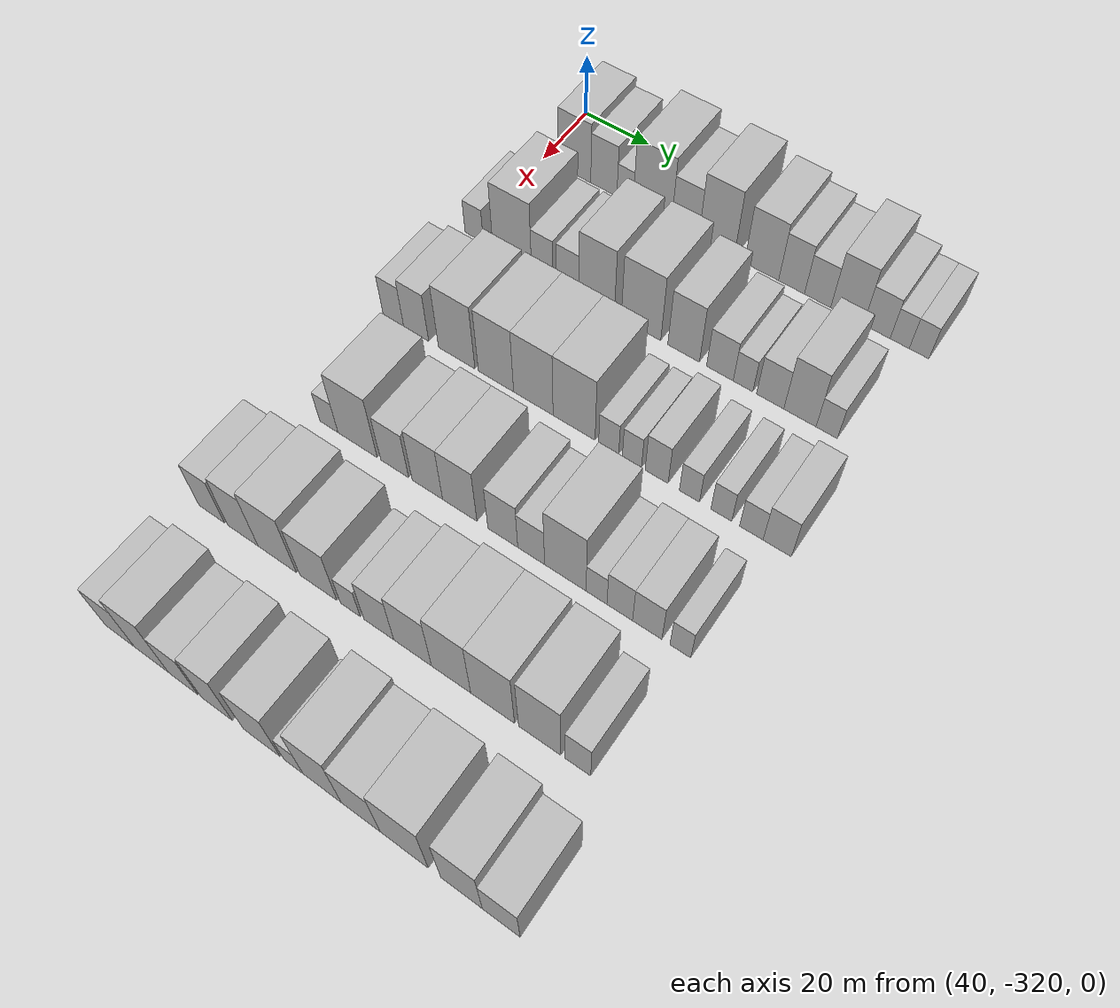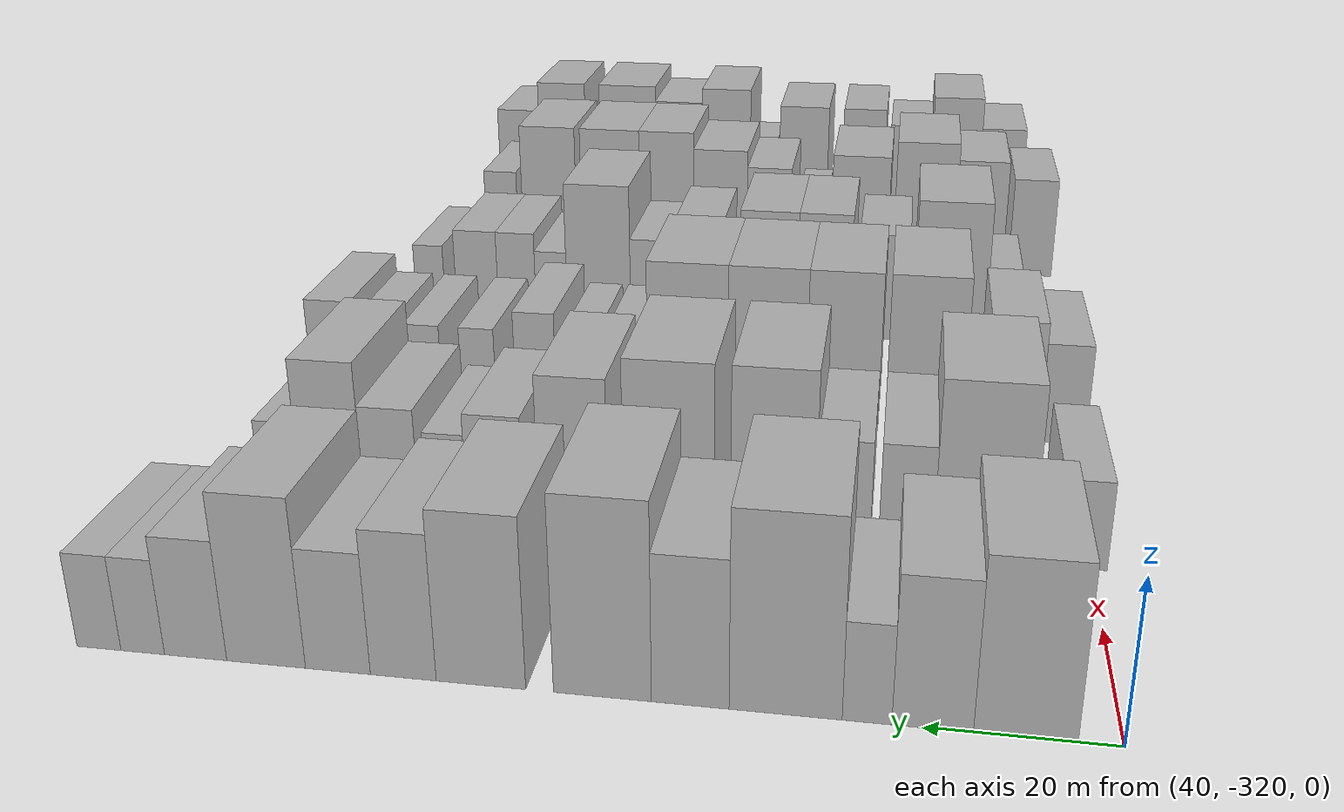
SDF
<sdf version="1.6">
 <world name="default">
  <model name="building_26">
   <static>1</static>
   <pose>50.0000 -310.2502 0 0.000000 0.000000 0.000000</pose>
   <link name="link">
    <pose>0 0 10.50 0 0 0</pose>
    <collision name="collision"><geometry><box><size>20.0000 10.3448 21.0000</size></box></geometry></collision>
    <visual name="visual">
     <cast_shadows>0</cast_shadows>
     <geometry><box><size>20.0000 10.3448 21.0000</size></box></geometry>
     <material>
      <script>
       <uri>model://HANNAS_wall/materials/scripts</uri>
       <uri>model://HANNAS_wall/materials/textures</uri>
       <name>vrc/HANNAS_wall</name>
      </script>
     </material>
    </visual>
   </link>
  </model>
  <model name="building_27">
   <static>1</static>
   <pose>50.0000 -300.9829 0 0.000000 0.000000 0.000000</pose>
   <link name="link">
    <pose>0 0 9.00 0 0 0</pose>
    <collision name="collision"><geometry><box><size>20.0000 8.1897 18.0000</size></box></geometry></collision>
    <visual name="visual">
     <cast_shadows>0</cast_shadows>
     <geometry><box><size>20.0000 8.1897 18.0000</size></box></geometry>
     <material>
      <script>
       <uri>model://HANNAS_wall/materials/scripts</uri>
       <uri>model://HANNAS_wall/materials/textures</uri>
       <name>vrc/HANNAS_wall</name>
      </script>
     </material>
    </visual>
   </link>
  </model>
  <model name="building_28">
   <static>1</static>
   <pose>50.0000 -294.3668 0 0.000000 0.000000 0.000000</pose>
   <link name="link">
    <pose>0 0 6.00 0 0 0</pose>
    <collision name="collision"><geometry><box><size>20.0000 5.0425 12.0000</size></box></geometry></collision>
    <visual name="visual">
     <cast_shadows>0</cast_shadows>
     <geometry><box><size>20.0000 5.0425 12.0000</size></box></geometry>
     <material>
      <script>
       <uri>model://HANNAS_wall/materials/scripts</uri>
       <uri>model://HANNAS_wall/materials/textures</uri>
       <name>vrc/HANNAS_wall</name>
      </script>
     </material>
    </visual>
   </link>
  </model>
  <model name="building_29">
   <static>1</static>
   <pose>50.0000 -286.0138 0 0.000000 0.000000 0.000000</pose>
   <link name="link">
    <pose>0 0 12.00 0 0 0</pose>
    <collision name="collision"><geometry><box><size>20.0000 11.6634 24.0000</size></box></geometry></collision>
    <visual name="visual">
     <cast_shadows>0</cast_shadows>
     <geometry><box><size>20.0000 11.6634 24.0000</size></box></geometry>
     <material>
      <script>
       <uri>model://HANNAS_wall/materials/scripts</uri>
       <uri>model://HANNAS_wall/materials/textures</uri>
       <name>vrc/HANNAS_wall</name>
      </script>
     </material>
    </visual>
   </link>
  </model>
  <model name="building_30">
   <static>1</static>
   <pose>50.0000 -276.1101 0 0.000000 0.000000 0.000000</pose>
   <link name="link">
    <pose>0 0 9.00 0 0 0</pose>
    <collision name="collision"><geometry><box><size>20.0000 8.1439 18.0000</size></box></geometry></collision>
    <visual name="visual">
     <cast_shadows>0</cast_shadows>
     <geometry><box><size>20.0000 8.1439 18.0000</size></box></geometry>
     <material>
      <script>
       <uri>model://HANNAS_wall/materials/scripts</uri>
       <uri>model://HANNAS_wall/materials/textures</uri>
       <name>vrc/HANNAS_wall</name>
      </script>
     </material>
    </visual>
   </link>
  </model>
  <model name="building_31">
   <static>1</static>
   <pose>50.0000 -266.8051 0 0.000000 0.000000 0.000000</pose>
   <link name="link">
    <pose>0 0 12.00 0 0 0</pose>
    <collision name="collision"><geometry><box><size>20.0000 10.4660 24.0000</size></box></geometry></collision>
    <visual name="visual">
     <cast_shadows>0</cast_shadows>
     <geometry><box><size>20.0000 10.4660 24.0000</size></box></geometry>
     <material>
      <script>
       <uri>model://HANNAS_wall/materials/scripts</uri>
       <uri>model://HANNAS_wall/materials/textures</uri>
       <name>vrc/HANNAS_wall</name>
      </script>
     </material>
    </visual>
   </link>
  </model>
  <model name="building_32">
   <static>1</static>
   <pose>50.0000 -253.6817 0 0.000000 0.000000 0.000000</pose>
   <link name="link">
    <pose>0 0 10.50 0 0 0</pose>
    <collision name="collision"><geometry><box><size>20.0000 9.7808 21.0000</size></box></geometry></collision>
    <visual name="visual">
     <cast_shadows>0</cast_shadows>
     <geometry><box><size>20.0000 9.7808 21.0000</size></box></geometry>
     <material>
      <script>
       <uri>model://HANNAS_wall/materials/scripts</uri>
       <uri>model://HANNAS_wall/materials/textures</uri>
       <name>vrc/HANNAS_wall</name>
      </script>
     </material>
    </visual>
   </link>
  </model>
  <model name="building_33">
   <static>1</static>
   <pose>50.0000 -245.1369 0 0.000000 0.000000 0.000000</pose>
   <link name="link">
    <pose>0 0 9.00 0 0 0</pose>
    <collision name="collision"><geometry><box><size>20.0000 7.3089 18.0000</size></box></geometry></collision>
    <visual name="visual">
     <cast_shadows>0</cast_shadows>
     <geometry><box><size>20.0000 7.3089 18.0000</size></box></geometry>
     <material>
      <script>
       <uri>model://HANNAS_wall/materials/scripts</uri>
       <uri>model://HANNAS_wall/materials/textures</uri>
       <name>vrc/HANNAS_wall</name>
      </script>
     </material>
    </visual>
   </link>
  </model>
  <model name="building_34">
   <static>1</static>
   <pose>50.0000 -237.8339 0 0.000000 0.000000 0.000000</pose>
   <link name="link">
    <pose>0 0 7.50 0 0 0</pose>
    <collision name="collision"><geometry><box><size>20.0000 7.2971 15.0000</size></box></geometry></collision>
    <visual name="visual">
     <cast_shadows>0</cast_shadows>
     <geometry><box><size>20.0000 7.2971 15.0000</size></box></geometry>
     <material>
      <script>
       <uri>model://HANNAS_wall/materials/scripts</uri>
       <uri>model://HANNAS_wall/materials/textures</uri>
       <name>vrc/HANNAS_wall</name>
      </script>
     </material>
    </visual>
   </link>
  </model>
  <model name="building_35">
   <static>1</static>
   <pose>50.0000 -229.6963 0 0.000000 0.000000 0.000000</pose>
   <link name="link">
    <pose>0 0 10.50 0 0 0</pose>
    <collision name="collision"><geometry><box><size>20.0000 8.9779 21.0000</size></box></geometry></collision>
    <visual name="visual">
     <cast_shadows>0</cast_shadows>
     <geometry><box><size>20.0000 8.9779 21.0000</size></box></geometry>
     <material>
      <script>
       <uri>model://HANNAS_wall/materials/scripts</uri>
       <uri>model://HANNAS_wall/materials/textures</uri>
       <name>vrc/HANNAS_wall</name>
      </script>
     </material>
    </visual>
   </link>
  </model>
  <model name="building_36">
   <static>1</static>
   <pose>50.0000 -221.6062 0 0.000000 0.000000 0.000000</pose>
   <link name="link">
    <pose>0 0 7.50 0 0 0</pose>
    <collision name="collision"><geometry><box><size>20.0000 7.2023 15.0000</size></box></geometry></collision>
    <visual name="visual">
     <cast_shadows>0</cast_shadows>
     <geometry><box><size>20.0000 7.2023 15.0000</size></box></geometry>
     <material>
      <script>
       <uri>model://HANNAS_wall/materials/scripts</uri>
       <uri>model://HANNAS_wall/materials/textures</uri>
       <name>vrc/HANNAS_wall</name>
      </script>
     </material>
    </visual>
   </link>
  </model>
  <model name="building_37">
   <static>1</static>
   <pose>50.0000 -215.4542 0 0.000000 0.000000 0.000000</pose>
   <link name="link">
    <pose>0 0 6.00 0 0 0</pose>
    <collision name="collision"><geometry><box><size>20.0000 5.1017 12.0000</size></box></geometry></collision>
    <visual name="visual">
     <cast_shadows>0</cast_shadows>
     <geometry><box><size>20.0000 5.1017 12.0000</size></box></geometry>
     <material>
      <script>
       <uri>model://HANNAS_wall/materials/scripts</uri>
       <uri>model://HANNAS_wall/materials/textures</uri>
       <name>vrc/HANNAS_wall</name>
      </script>
     </material>
    </visual>
   </link>
  </model>
  <model name="building_38">
   <static>1</static>
   <pose>50.0000 -210.3099 0 0.000000 0.000000 0.000000</pose>
   <link name="link">
    <pose>0 0 6.00 0 0 0</pose>
    <collision name="collision"><geometry><box><size>20.0000 5.1870 12.0000</size></box></geometry></collision>
    <visual name="visual">
     <cast_shadows>0</cast_shadows>
     <geometry><box><size>20.0000 5.1870 12.0000</size></box></geometry>
     <material>
      <script>
       <uri>model://HANNAS_wall/materials/scripts</uri>
       <uri>model://HANNAS_wall/materials/textures</uri>
       <name>vrc/HANNAS_wall</name>
      </script>
     </material>
    </visual>
   </link>
  </model>
  <model name="building_149">
   <static>1</static>
   <pose>82.0000 -318.8786 0 0.000000 0.000000 0.000000</pose>
   <link name="link">
    <pose>0 0 6.00 0 0 0</pose>
    <collision name="collision"><geometry><box><size>20.0000 5.7820 12.0000</size></box></geometry></collision>
    <visual name="visual">
     <cast_shadows>0</cast_shadows>
     <geometry><box><size>20.0000 5.7820 12.0000</size></box></geometry>
     <material>
      <script>
       <uri>model://HANNAS_wall/materials/scripts</uri>
       <uri>model://HANNAS_wall/materials/textures</uri>
       <name>vrc/HANNAS_wall</name>
      </script>
     </material>
    </visual>
   </link>
  </model>
  <model name="building_150">
   <static>1</static>
   <pose>82.0000 -307.0043 0 0.000000 0.000000 0.000000</pose>
   <link name="link">
    <pose>0 0 12.00 0 0 0</pose>
    <collision name="collision"><geometry><box><size>20.0000 11.9664 24.0000</size></box></geometry></collision>
    <visual name="visual">
     <cast_shadows>0</cast_shadows>
     <geometry><box><size>20.0000 11.9664 24.0000</size></box></geometry>
     <material>
      <script>
       <uri>model://HANNAS_wall/materials/scripts</uri>
       <uri>model://HANNAS_wall/materials/textures</uri>
       <name>vrc/HANNAS_wall</name>
      </script>
     </material>
    </visual>
   </link>
  </model>
  <model name="building_151">
   <static>1</static>
   <pose>82.0000 -297.7386 0 0.000000 0.000000 0.000000</pose>
   <link name="link">
    <pose>0 0 7.50 0 0 0</pose>
    <collision name="collision"><geometry><box><size>20.0000 6.5650 15.0000</size></box></geometry></collision>
    <visual name="visual">
     <cast_shadows>0</cast_shadows>
     <geometry><box><size>20.0000 6.5650 15.0000</size></box></geometry>
     <material>
      <script>
       <uri>model://HANNAS_wall/materials/scripts</uri>
       <uri>model://HANNAS_wall/materials/textures</uri>
       <name>vrc/HANNAS_wall</name>
      </script>
     </material>
    </visual>
   </link>
  </model>
  <model name="building_152">
   <static>1</static>
   <pose>82.0000 -290.1048 0 0.000000 0.000000 0.000000</pose>
   <link name="link">
    <pose>0 0 7.50 0 0 0</pose>
    <collision name="collision"><geometry><box><size>20.0000 6.7027 15.0000</size></box></geometry></collision>
    <visual name="visual">
     <cast_shadows>0</cast_shadows>
     <geometry><box><size>20.0000 6.7027 15.0000</size></box></geometry>
     <material>
      <script>
       <uri>model://HANNAS_wall/materials/scripts</uri>
       <uri>model://HANNAS_wall/materials/textures</uri>
       <name>vrc/HANNAS_wall</name>
      </script>
     </material>
    </visual>
   </link>
  </model>
  <model name="building_153">
   <static>1</static>
   <pose>82.0000 -281.4991 0 0.000000 0.000000 0.000000</pose>
   <link name="link">
    <pose>0 0 12.00 0 0 0</pose>
    <collision name="collision"><geometry><box><size>20.0000 10.5086 24.0000</size></box></geometry></collision>
    <visual name="visual">
     <cast_shadows>0</cast_shadows>
     <geometry><box><size>20.0000 10.5086 24.0000</size></box></geometry>
     <material>
      <script>
       <uri>model://HANNAS_wall/materials/scripts</uri>
       <uri>model://HANNAS_wall/materials/textures</uri>
       <name>vrc/HANNAS_wall</name>
      </script>
     </material>
    </visual>
   </link>
  </model>
  <model name="building_154">
   <static>1</static>
   <pose>82.0000 -268.5455 0 0.000000 0.000000 0.000000</pose>
   <link name="link">
    <pose>0 0 12.00 0 0 0</pose>
    <collision name="collision"><geometry><box><size>20.0000 11.3986 24.0000</size></box></geometry></collision>
    <visual name="visual">
     <cast_shadows>0</cast_shadows>
     <geometry><box><size>20.0000 11.3986 24.0000</size></box></geometry>
     <material>
      <script>
       <uri>model://HANNAS_wall/materials/scripts</uri>
       <uri>model://HANNAS_wall/materials/textures</uri>
       <name>vrc/HANNAS_wall</name>
      </script>
     </material>
    </visual>
   </link>
  </model>
  <model name="building_155">
   <static>1</static>
   <pose>82.0000 -256.4005 0 0.000000 0.000000 0.000000</pose>
   <link name="link">
    <pose>0 0 10.50 0 0 0</pose>
    <collision name="collision"><geometry><box><size>20.0000 8.8914 21.0000</size></box></geometry></collision>
    <visual name="visual">
     <cast_shadows>0</cast_shadows>
     <geometry><box><size>20.0000 8.8914 21.0000</size></box></geometry>
     <material>
      <script>
       <uri>model://HANNAS_wall/materials/scripts</uri>
       <uri>model://HANNAS_wall/materials/textures</uri>
       <name>vrc/HANNAS_wall</name>
      </script>
     </material>
    </visual>
   </link>
  </model>
  <model name="building_156">
   <static>1</static>
   <pose>82.0000 -246.2782 0 0.000000 0.000000 0.000000</pose>
   <link name="link">
    <pose>0 0 7.50 0 0 0</pose>
    <collision name="collision"><geometry><box><size>20.0000 7.3533 15.0000</size></box></geometry></collision>
    <visual name="visual">
     <cast_shadows>0</cast_shadows>
     <geometry><box><size>20.0000 7.3533 15.0000</size></box></geometry>
     <material>
      <script>
       <uri>model://HANNAS_wall/materials/scripts</uri>
       <uri>model://HANNAS_wall/materials/textures</uri>
       <name>vrc/HANNAS_wall</name>
      </script>
     </material>
    </visual>
   </link>
  </model>
  <model name="building_157">
   <static>1</static>
   <pose>82.0000 -239.9407 0 0.000000 0.000000 0.000000</pose>
   <link name="link">
    <pose>0 0 6.00 0 0 0</pose>
    <collision name="collision"><geometry><box><size>20.0000 5.3215 12.0000</size></box></geometry></collision>
    <visual name="visual">
     <cast_shadows>0</cast_shadows>
     <geometry><box><size>20.0000 5.3215 12.0000</size></box></geometry>
     <material>
      <script>
       <uri>model://HANNAS_wall/materials/scripts</uri>
       <uri>model://HANNAS_wall/materials/textures</uri>
       <name>vrc/HANNAS_wall</name>
      </script>
     </material>
    </visual>
   </link>
  </model>
  <model name="building_158">
   <static>1</static>
   <pose>82.0000 -232.6326 0 0.000000 0.000000 0.000000</pose>
   <link name="link">
    <pose>0 0 7.50 0 0 0</pose>
    <collision name="collision"><geometry><box><size>20.0000 7.2948 15.0000</size></box></geometry></collision>
    <visual name="visual">
     <cast_shadows>0</cast_shadows>
     <geometry><box><size>20.0000 7.2948 15.0000</size></box></geometry>
     <material>
      <script>
       <uri>model://HANNAS_wall/materials/scripts</uri>
       <uri>model://HANNAS_wall/materials/textures</uri>
       <name>vrc/HANNAS_wall</name>
      </script>
     </material>
    </visual>
   </link>
  </model>
  <model name="building_159">
   <static>1</static>
   <pose>82.0000 -224.7277 0 0.000000 0.000000 0.000000</pose>
   <link name="link">
    <pose>0 0 10.50 0 0 0</pose>
    <collision name="collision"><geometry><box><size>20.0000 8.5152 21.0000</size></box></geometry></collision>
    <visual name="visual">
     <cast_shadows>0</cast_shadows>
     <geometry><box><size>20.0000 8.5152 21.0000</size></box></geometry>
     <material>
      <script>
       <uri>model://HANNAS_wall/materials/scripts</uri>
       <uri>model://HANNAS_wall/materials/textures</uri>
       <name>vrc/HANNAS_wall</name>
      </script>
     </material>
    </visual>
   </link>
  </model>
  <model name="building_160">
   <static>1</static>
   <pose>82.0000 -217.7069 0 0.000000 0.000000 0.000000</pose>
   <link name="link">
    <pose>0 0 6.00 0 0 0</pose>
    <collision name="collision"><geometry><box><size>20.0000 5.5263 12.0000</size></box></geometry></collision>
    <visual name="visual">
     <cast_shadows>0</cast_shadows>
     <geometry><box><size>20.0000 5.5263 12.0000</size></box></geometry>
     <material>
      <script>
       <uri>model://HANNAS_wall/materials/scripts</uri>
       <uri>model://HANNAS_wall/materials/textures</uri>
       <name>vrc/HANNAS_wall</name>
      </script>
     </material>
    </visual>
   </link>
  </model>
  <model name="building_272">
   <static>1</static>
   <pose>114.0000 -319.1784 0 0.000000 0.000000 0.000000</pose>
   <link name="link">
    <pose>0 0 7.50 0 0 0</pose>
    <collision name="collision"><geometry><box><size>20.0000 6.3528 15.0000</size></box></geometry></collision>
    <visual name="visual">
     <cast_shadows>0</cast_shadows>
     <geometry><box><size>20.0000 6.3528 15.0000</size></box></geometry>
     <material>
      <script>
       <uri>model://HANNAS_wall/materials/scripts</uri>
       <uri>model://HANNAS_wall/materials/textures</uri>
       <name>vrc/HANNAS_wall</name>
      </script>
     </material>
    </visual>
   </link>
  </model>
  <model name="building_273">
   <static>1</static>
   <pose>114.0000 -312.1640 0 0.000000 0.000000 0.000000</pose>
   <link name="link">
    <pose>0 0 9.00 0 0 0</pose>
    <collision name="collision"><geometry><box><size>20.0000 7.6761 18.0000</size></box></geometry></collision>
    <visual name="visual">
     <cast_shadows>0</cast_shadows>
     <geometry><box><size>20.0000 7.6761 18.0000</size></box></geometry>
     <material>
      <script>
       <uri>model://HANNAS_wall/materials/scripts</uri>
       <uri>model://HANNAS_wall/materials/textures</uri>
       <name>vrc/HANNAS_wall</name>
      </script>
     </material>
    </visual>
   </link>
  </model>
  <model name="building_274">
   <static>1</static>
   <pose>114.0000 -299.8731 0 0.000000 0.000000 0.000000</pose>
   <link name="link">
    <pose>0 0 12.00 0 0 0</pose>
    <collision name="collision"><geometry><box><size>20.0000 10.9057 24.0000</size></box></geometry></collision>
    <visual name="visual">
     <cast_shadows>0</cast_shadows>
     <geometry><box><size>20.0000 10.9057 24.0000</size></box></geometry>
     <material>
      <script>
       <uri>model://HANNAS_wall/materials/scripts</uri>
       <uri>model://HANNAS_wall/materials/textures</uri>
       <name>vrc/HANNAS_wall</name>
      </script>
     </material>
    </visual>
   </link>
  </model>
  <model name="building_275">
   <static>1</static>
   <pose>114.0000 -288.2675 0 0.000000 0.000000 0.000000</pose>
   <link name="link">
    <pose>0 0 12.00 0 0 0</pose>
    <collision name="collision"><geometry><box><size>20.0000 10.3055 24.0000</size></box></geometry></collision>
    <visual name="visual">
     <cast_shadows>0</cast_shadows>
     <geometry><box><size>20.0000 10.3055 24.0000</size></box></geometry>
     <material>
      <script>
       <uri>model://HANNAS_wall/materials/scripts</uri>
       <uri>model://HANNAS_wall/materials/textures</uri>
       <name>vrc/HANNAS_wall</name>
      </script>
     </material>
    </visual>
   </link>
  </model>
  <model name="building_276">
   <static>1</static>
   <pose>114.0000 -277.4690 0 0.000000 0.000000 0.000000</pose>
   <link name="link">
    <pose>0 0 12.00 0 0 0</pose>
    <collision name="collision"><geometry><box><size>20.0000 11.2916 24.0000</size></box></geometry></collision>
    <visual name="visual">
     <cast_shadows>0</cast_shadows>
     <geometry><box><size>20.0000 11.2916 24.0000</size></box></geometry>
     <material>
      <script>
       <uri>model://HANNAS_wall/materials/scripts</uri>
       <uri>model://HANNAS_wall/materials/textures</uri>
       <name>vrc/HANNAS_wall</name>
      </script>
     </material>
    </visual>
   </link>
  </model>
  <model name="building_277">
   <static>1</static>
   <pose>114.0000 -265.9635 0 0.000000 0.000000 0.000000</pose>
   <link name="link">
    <pose>0 0 12.00 0 0 0</pose>
    <collision name="collision"><geometry><box><size>20.0000 11.7194 24.0000</size></box></geometry></collision>
    <visual name="visual">
     <cast_shadows>0</cast_shadows>
     <geometry><box><size>20.0000 11.7194 24.0000</size></box></geometry>
     <material>
      <script>
       <uri>model://HANNAS_wall/materials/scripts</uri>
       <uri>model://HANNAS_wall/materials/textures</uri>
       <name>vrc/HANNAS_wall</name>
      </script>
     </material>
    </visual>
   </link>
  </model>
  <model name="building_278">
   <static>1</static>
   <pose>114.0000 -256.3662 0 0.000000 0.000000 0.000000</pose>
   <link name="link">
    <pose>0 0 6.00 0 0 0</pose>
    <collision name="collision"><geometry><box><size>20.0000 5.4751 12.0000</size></box></geometry></collision>
    <visual name="visual">
     <cast_shadows>0</cast_shadows>
     <geometry><box><size>20.0000 5.4751 12.0000</size></box></geometry>
     <material>
      <script>
       <uri>model://HANNAS_wall/materials/scripts</uri>
       <uri>model://HANNAS_wall/materials/textures</uri>
       <name>vrc/HANNAS_wall</name>
      </script>
     </material>
    </visual>
   </link>
  </model>
  <model name="building_279">
   <static>1</static>
   <pose>114.0000 -250.0505 0 0.000000 0.000000 0.000000</pose>
   <link name="link">
    <pose>0 0 6.00 0 0 0</pose>
    <collision name="collision"><geometry><box><size>20.0000 5.1563 12.0000</size></box></geometry></collision>
    <visual name="visual">
     <cast_shadows>0</cast_shadows>
     <geometry><box><size>20.0000 5.1563 12.0000</size></box></geometry>
     <material>
      <script>
       <uri>model://HANNAS_wall/materials/scripts</uri>
       <uri>model://HANNAS_wall/materials/textures</uri>
       <name>vrc/HANNAS_wall</name>
      </script>
     </material>
    </visual>
   </link>
  </model>
  <model name="building_280">
   <static>1</static>
   <pose>114.0000 -243.4200 0 0.000000 0.000000 0.000000</pose>
   <link name="link">
    <pose>0 0 7.50 0 0 0</pose>
    <collision name="collision"><geometry><box><size>20.0000 6.1046 15.0000</size></box></geometry></collision>
    <visual name="visual">
     <cast_shadows>0</cast_shadows>
     <geometry><box><size>20.0000 6.1046 15.0000</size></box></geometry>
     <material>
      <script>
       <uri>model://HANNAS_wall/materials/scripts</uri>
       <uri>model://HANNAS_wall/materials/textures</uri>
       <name>vrc/HANNAS_wall</name>
      </script>
     </material>
    </visual>
   </link>
  </model>
  <model name="building_281">
   <static>1</static>
   <pose>114.0000 -234.7457 0 0.000000 0.000000 0.000000</pose>
   <link name="link">
    <pose>0 0 6.00 0 0 0</pose>
    <collision name="collision"><geometry><box><size>20.0000 5.2440 12.0000</size></box></geometry></collision>
    <visual name="visual">
     <cast_shadows>0</cast_shadows>
     <geometry><box><size>20.0000 5.2440 12.0000</size></box></geometry>
     <material>
      <script>
       <uri>model://HANNAS_wall/materials/scripts</uri>
       <uri>model://HANNAS_wall/materials/textures</uri>
       <name>vrc/HANNAS_wall</name>
      </script>
     </material>
    </visual>
   </link>
  </model>
  <model name="building_282">
   <static>1</static>
   <pose>114.0000 -226.4640 0 0.000000 0.000000 0.000000</pose>
   <link name="link">
    <pose>0 0 6.00 0 0 0</pose>
    <collision name="collision"><geometry><box><size>20.0000 5.3193 12.0000</size></box></geometry></collision>
    <visual name="visual">
     <cast_shadows>0</cast_shadows>
     <geometry><box><size>20.0000 5.3193 12.0000</size></box></geometry>
     <material>
      <script>
       <uri>model://HANNAS_wall/materials/scripts</uri>
       <uri>model://HANNAS_wall/materials/textures</uri>
       <name>vrc/HANNAS_wall</name>
      </script>
     </material>
    </visual>
   </link>
  </model>
  <model name="building_283">
   <static>1</static>
   <pose>114.0000 -218.8257 0 0.000000 0.000000 0.000000</pose>
   <link name="link">
    <pose>0 0 6.00 0 0 0</pose>
    <collision name="collision"><geometry><box><size>20.0000 5.9572 12.0000</size></box></geometry></collision>
    <visual name="visual">
     <cast_shadows>0</cast_shadows>
     <geometry><box><size>20.0000 5.9572 12.0000</size></box></geometry>
     <material>
      <script>
       <uri>model://HANNAS_wall/materials/scripts</uri>
       <uri>model://HANNAS_wall/materials/textures</uri>
       <name>vrc/HANNAS_wall</name>
      </script>
     </material>
    </visual>
   </link>
  </model>
  <model name="building_284">
   <static>1</static>
   <pose>114.0000 -212.3174 0 0.000000 0.000000 0.000000</pose>
   <link name="link">
    <pose>0 0 7.50 0 0 0</pose>
    <collision name="collision"><geometry><box><size>20.0000 7.0594 15.0000</size></box></geometry></collision>
    <visual name="visual">
     <cast_shadows>0</cast_shadows>
     <geometry><box><size>20.0000 7.0594 15.0000</size></box></geometry>
     <material>
      <script>
       <uri>model://HANNAS_wall/materials/scripts</uri>
       <uri>model://HANNAS_wall/materials/textures</uri>
       <name>vrc/HANNAS_wall</name>
      </script>
     </material>
    </visual>
   </link>
  </model>
  <model name="building_392">
   <static>1</static>
   <pose>146.0000 -312.2354 0 0.000000 0.000000 0.000000</pose>
   <link name="link">
    <pose>0 0 6.00 0 0 0</pose>
    <collision name="collision"><geometry><box><size>20.0000 5.4741 12.0000</size></box></geometry></collision>
    <visual name="visual">
     <cast_shadows>0</cast_shadows>
     <geometry><box><size>20.0000 5.4741 12.0000</size></box></geometry>
     <material>
      <script>
       <uri>model://HANNAS_wall/materials/scripts</uri>
       <uri>model://HANNAS_wall/materials/textures</uri>
       <name>vrc/HANNAS_wall</name>
      </script>
     </material>
    </visual>
   </link>
  </model>
  <model name="building_393">
   <static>1</static>
   <pose>146.0000 -303.7010 0 0.000000 0.000000 0.000000</pose>
   <link name="link">
    <pose>0 0 12.00 0 0 0</pose>
    <collision name="collision"><geometry><box><size>20.0000 11.5946 24.0000</size></box></geometry></collision>
    <visual name="visual">
     <cast_shadows>0</cast_shadows>
     <geometry><box><size>20.0000 11.5946 24.0000</size></box></geometry>
     <material>
      <script>
       <uri>model://HANNAS_wall/materials/scripts</uri>
       <uri>model://HANNAS_wall/materials/textures</uri>
       <name>vrc/HANNAS_wall</name>
      </script>
     </material>
    </visual>
   </link>
  </model>
  <model name="building_394">
   <static>1</static>
   <pose>146.0000 -292.8615 0 0.000000 0.000000 0.000000</pose>
   <link name="link">
    <pose>0 0 9.00 0 0 0</pose>
    <collision name="collision"><geometry><box><size>20.0000 8.0845 18.0000</size></box></geometry></collision>
    <visual name="visual">
     <cast_shadows>0</cast_shadows>
     <geometry><box><size>20.0000 8.0845 18.0000</size></box></geometry>
     <material>
      <script>
       <uri>model://HANNAS_wall/materials/scripts</uri>
       <uri>model://HANNAS_wall/materials/textures</uri>
       <name>vrc/HANNAS_wall</name>
      </script>
     </material>
    </visual>
   </link>
  </model>
  <model name="building_395">
   <static>1</static>
   <pose>146.0000 -283.5139 0 0.000000 0.000000 0.000000</pose>
   <link name="link">
    <pose>0 0 10.50 0 0 0</pose>
    <collision name="collision"><geometry><box><size>20.0000 8.6107 21.0000</size></box></geometry></collision>
    <visual name="visual">
     <cast_shadows>0</cast_shadows>
     <geometry><box><size>20.0000 8.6107 21.0000</size></box></geometry>
     <material>
      <script>
       <uri>model://HANNAS_wall/materials/scripts</uri>
       <uri>model://HANNAS_wall/materials/textures</uri>
       <name>vrc/HANNAS_wall</name>
      </script>
     </material>
    </visual>
   </link>
  </model>
  <model name="building_396">
   <static>1</static>
   <pose>146.0000 -274.4364 0 0.000000 0.000000 0.000000</pose>
   <link name="link">
    <pose>0 0 10.50 0 0 0</pose>
    <collision name="collision"><geometry><box><size>20.0000 9.5443 21.0000</size></box></geometry></collision>
    <visual name="visual">
     <cast_shadows>0</cast_shadows>
     <geometry><box><size>20.0000 9.5443 21.0000</size></box></geometry>
     <material>
      <script>
       <uri>model://HANNAS_wall/materials/scripts</uri>
       <uri>model://HANNAS_wall/materials/textures</uri>
       <name>vrc/HANNAS_wall</name>
      </script>
     </material>
    </visual>
   </link>
  </model>
  <model name="building_397">
   <static>1</static>
   <pose>146.0000 -262.6228 0 0.000000 0.000000 0.000000</pose>
   <link name="link">
    <pose>0 0 9.00 0 0 0</pose>
    <collision name="collision"><geometry><box><size>20.0000 8.0829 18.0000</size></box></geometry></collision>
    <visual name="visual">
     <cast_shadows>0</cast_shadows>
     <geometry><box><size>20.0000 8.0829 18.0000</size></box></geometry>
     <material>
      <script>
       <uri>model://HANNAS_wall/materials/scripts</uri>
       <uri>model://HANNAS_wall/materials/textures</uri>
       <name>vrc/HANNAS_wall</name>
      </script>
     </material>
    </visual>
   </link>
  </model>
  <model name="building_398">
   <static>1</static>
   <pose>146.0000 -255.0099 0 0.000000 0.000000 0.000000</pose>
   <link name="link">
    <pose>0 0 7.50 0 0 0</pose>
    <collision name="collision"><geometry><box><size>20.0000 7.1429 15.0000</size></box></geometry></collision>
    <visual name="visual">
     <cast_shadows>0</cast_shadows>
     <geometry><box><size>20.0000 7.1429 15.0000</size></box></geometry>
     <material>
      <script>
       <uri>model://HANNAS_wall/materials/scripts</uri>
       <uri>model://HANNAS_wall/materials/textures</uri>
       <name>vrc/HANNAS_wall</name>
      </script>
     </material>
    </visual>
   </link>
  </model>
  <model name="building_399">
   <static>1</static>
   <pose>146.0000 -246.0383 0 0.000000 0.000000 0.000000</pose>
   <link name="link">
    <pose>0 0 12.00 0 0 0</pose>
    <collision name="collision"><geometry><box><size>20.0000 10.8003 24.0000</size></box></geometry></collision>
    <visual name="visual">
     <cast_shadows>0</cast_shadows>
     <geometry><box><size>20.0000 10.8003 24.0000</size></box></geometry>
     <material>
      <script>
       <uri>model://HANNAS_wall/materials/scripts</uri>
       <uri>model://HANNAS_wall/materials/textures</uri>
       <name>vrc/HANNAS_wall</name>
      </script>
     </material>
    </visual>
   </link>
  </model>
  <model name="building_400">
   <static>1</static>
   <pose>146.0000 -237.9564 0 0.000000 0.000000 0.000000</pose>
   <link name="link">
    <pose>0 0 6.00 0 0 0</pose>
    <collision name="collision"><geometry><box><size>20.0000 5.3635 12.0000</size></box></geometry></collision>
    <visual name="visual">
     <cast_shadows>0</cast_shadows>
     <geometry><box><size>20.0000 5.3635 12.0000</size></box></geometry>
     <material>
      <script>
       <uri>model://HANNAS_wall/materials/scripts</uri>
       <uri>model://HANNAS_wall/materials/textures</uri>
       <name>vrc/HANNAS_wall</name>
      </script>
     </material>
    </visual>
   </link>
  </model>
  <model name="building_401">
   <static>1</static>
   <pose>146.0000 -232.0297 0 0.000000 0.000000 0.000000</pose>
   <link name="link">
    <pose>0 0 7.50 0 0 0</pose>
    <collision name="collision"><geometry><box><size>20.0000 6.4900 15.0000</size></box></geometry></collision>
    <visual name="visual">
     <cast_shadows>0</cast_shadows>
     <geometry><box><size>20.0000 6.4900 15.0000</size></box></geometry>
     <material>
      <script>
       <uri>model://HANNAS_wall/materials/scripts</uri>
       <uri>model://HANNAS_wall/materials/textures</uri>
       <name>vrc/HANNAS_wall</name>
      </script>
     </material>
    </visual>
   </link>
  </model>
  <model name="building_402">
   <static>1</static>
   <pose>146.0000 -225.1302 0 0.000000 0.000000 0.000000</pose>
   <link name="link">
    <pose>0 0 7.50 0 0 0</pose>
    <collision name="collision"><geometry><box><size>20.0000 7.3090 15.0000</size></box></geometry></collision>
    <visual name="visual">
     <cast_shadows>0</cast_shadows>
     <geometry><box><size>20.0000 7.3090 15.0000</size></box></geometry>
     <material>
      <script>
       <uri>model://HANNAS_wall/materials/scripts</uri>
       <uri>model://HANNAS_wall/materials/textures</uri>
       <name>vrc/HANNAS_wall</name>
      </script>
     </material>
    </visual>
   </link>
  </model>
  <model name="building_403">
   <static>1</static>
   <pose>146.0000 -216.9316 0 0.000000 0.000000 0.000000</pose>
   <link name="link">
    <pose>0 0 6.00 0 0 0</pose>
    <collision name="collision"><geometry><box><size>20.0000 5.0882 12.0000</size></box></geometry></collision>
    <visual name="visual">
     <cast_shadows>0</cast_shadows>
     <geometry><box><size>20.0000 5.0882 12.0000</size></box></geometry>
     <material>
      <script>
       <uri>model://HANNAS_wall/materials/scripts</uri>
       <uri>model://HANNAS_wall/materials/textures</uri>
       <name>vrc/HANNAS_wall</name>
      </script>
     </material>
    </visual>
   </link>
  </model>
  <model name="building_511">
   <static>1</static>
   <pose>178.0000 -318.6426 0 0.000000 0.000000 0.000000</pose>
   <link name="link">
    <pose>0 0 9.00 0 0 0</pose>
    <collision name="collision"><geometry><box><size>20.0000 7.6570 18.0000</size></box></geometry></collision>
    <visual name="visual">
     <cast_shadows>0</cast_shadows>
     <geometry><box><size>20.0000 7.6570 18.0000</size></box></geometry>
     <material>
      <script>
       <uri>model://HANNAS_wall/materials/scripts</uri>
       <uri>model://HANNAS_wall/materials/textures</uri>
       <name>vrc/HANNAS_wall</name>
      </script>
     </material>
    </visual>
   </link>
  </model>
  <model name="building_512">
   <static>1</static>
   <pose>178.0000 -309.3924 0 0.000000 0.000000 0.000000</pose>
   <link name="link">
    <pose>0 0 10.50 0 0 0</pose>
    <collision name="collision"><geometry><box><size>20.0000 8.8433 21.0000</size></box></geometry></collision>
    <visual name="visual">
     <cast_shadows>0</cast_shadows>
     <geometry><box><size>20.0000 8.8433 21.0000</size></box></geometry>
     <material>
      <script>
       <uri>model://HANNAS_wall/materials/scripts</uri>
       <uri>model://HANNAS_wall/materials/textures</uri>
       <name>vrc/HANNAS_wall</name>
      </script>
     </material>
    </visual>
   </link>
  </model>
  <model name="building_513">
   <static>1</static>
   <pose>178.0000 -299.4812 0 0.000000 0.000000 0.000000</pose>
   <link name="link">
    <pose>0 0 12.00 0 0 0</pose>
    <collision name="collision"><geometry><box><size>20.0000 10.9791 24.0000</size></box></geometry></collision>
    <visual name="visual">
     <cast_shadows>0</cast_shadows>
     <geometry><box><size>20.0000 10.9791 24.0000</size></box></geometry>
     <material>
      <script>
       <uri>model://HANNAS_wall/materials/scripts</uri>
       <uri>model://HANNAS_wall/materials/textures</uri>
       <name>vrc/HANNAS_wall</name>
      </script>
     </material>
    </visual>
   </link>
  </model>
  <model name="building_514">
   <static>1</static>
   <pose>178.0000 -287.8195 0 0.000000 0.000000 0.000000</pose>
   <link name="link">
    <pose>0 0 10.50 0 0 0</pose>
    <collision name="collision"><geometry><box><size>20.0000 10.3444 21.0000</size></box></geometry></collision>
    <visual name="visual">
     <cast_shadows>0</cast_shadows>
     <geometry><box><size>20.0000 10.3444 21.0000</size></box></geometry>
     <material>
      <script>
       <uri>model://HANNAS_wall/materials/scripts</uri>
       <uri>model://HANNAS_wall/materials/textures</uri>
       <name>vrc/HANNAS_wall</name>
      </script>
     </material>
    </visual>
   </link>
  </model>
  <model name="building_515">
   <static>1</static>
   <pose>178.0000 -278.9357 0 0.000000 0.000000 0.000000</pose>
   <link name="link">
    <pose>0 0 6.00 0 0 0</pose>
    <collision name="collision"><geometry><box><size>20.0000 5.4233 12.0000</size></box></geometry></collision>
    <visual name="visual">
     <cast_shadows>0</cast_shadows>
     <geometry><box><size>20.0000 5.4233 12.0000</size></box></geometry>
     <material>
      <script>
       <uri>model://HANNAS_wall/materials/scripts</uri>
       <uri>model://HANNAS_wall/materials/textures</uri>
       <name>vrc/HANNAS_wall</name>
      </script>
     </material>
    </visual>
   </link>
  </model>
  <model name="building_516">
   <static>1</static>
   <pose>178.0000 -271.1925 0 0.000000 0.000000 0.000000</pose>
   <link name="link">
    <pose>0 0 9.00 0 0 0</pose>
    <collision name="collision"><geometry><box><size>20.0000 8.0630 18.0000</size></box></geometry></collision>
    <visual name="visual">
     <cast_shadows>0</cast_shadows>
     <geometry><box><size>20.0000 8.0630 18.0000</size></box></geometry>
     <material>
      <script>
       <uri>model://HANNAS_wall/materials/scripts</uri>
       <uri>model://HANNAS_wall/materials/textures</uri>
       <name>vrc/HANNAS_wall</name>
      </script>
     </material>
    </visual>
   </link>
  </model>
  <model name="building_517">
   <static>1</static>
   <pose>178.0000 -262.1916 0 0.000000 0.000000 0.000000</pose>
   <link name="link">
    <pose>0 0 10.50 0 0 0</pose>
    <collision name="collision"><geometry><box><size>20.0000 9.9388 21.0000</size></box></geometry></collision>
    <visual name="visual">
     <cast_shadows>0</cast_shadows>
     <geometry><box><size>20.0000 9.9388 21.0000</size></box></geometry>
     <material>
      <script>
       <uri>model://HANNAS_wall/materials/scripts</uri>
       <uri>model://HANNAS_wall/materials/textures</uri>
       <name>vrc/HANNAS_wall</name>
      </script>
     </material>
    </visual>
   </link>
  </model>
  <model name="building_518">
   <static>1</static>
   <pose>178.0000 -252.1523 0 0.000000 0.000000 0.000000</pose>
   <link name="link">
    <pose>0 0 12.00 0 0 0</pose>
    <collision name="collision"><geometry><box><size>20.0000 10.1397 24.0000</size></box></geometry></collision>
    <visual name="visual">
     <cast_shadows>0</cast_shadows>
     <geometry><box><size>20.0000 10.1397 24.0000</size></box></geometry>
     <material>
      <script>
       <uri>model://HANNAS_wall/materials/scripts</uri>
       <uri>model://HANNAS_wall/materials/textures</uri>
       <name>vrc/HANNAS_wall</name>
      </script>
     </material>
    </visual>
   </link>
  </model>
  <model name="building_519">
   <static>1</static>
   <pose>178.0000 -241.5678 0 0.000000 0.000000 0.000000</pose>
   <link name="link">
    <pose>0 0 12.00 0 0 0</pose>
    <collision name="collision"><geometry><box><size>20.0000 11.0294 24.0000</size></box></geometry></collision>
    <visual name="visual">
     <cast_shadows>0</cast_shadows>
     <geometry><box><size>20.0000 11.0294 24.0000</size></box></geometry>
     <material>
      <script>
       <uri>model://HANNAS_wall/materials/scripts</uri>
       <uri>model://HANNAS_wall/materials/textures</uri>
       <name>vrc/HANNAS_wall</name>
      </script>
     </material>
    </visual>
   </link>
  </model>
  <model name="building_520">
   <static>1</static>
   <pose>178.0000 -229.8735 0 0.000000 0.000000 0.000000</pose>
   <link name="link">
    <pose>0 0 12.00 0 0 0</pose>
    <collision name="collision"><geometry><box><size>20.0000 10.3591 24.0000</size></box></geometry></collision>
    <visual name="visual">
     <cast_shadows>0</cast_shadows>
     <geometry><box><size>20.0000 10.3591 24.0000</size></box></geometry>
     <material>
      <script>
       <uri>model://HANNAS_wall/materials/scripts</uri>
       <uri>model://HANNAS_wall/materials/textures</uri>
       <name>vrc/HANNAS_wall</name>
      </script>
     </material>
    </visual>
   </link>
  </model>
  <model name="building_521">
   <static>1</static>
   <pose>178.0000 -220.6169 0 0.000000 0.000000 0.000000</pose>
   <link name="link">
    <pose>0 0 7.50 0 0 0</pose>
    <collision name="collision"><geometry><box><size>20.0000 6.1542 15.0000</size></box></geometry></collision>
    <visual name="visual">
     <cast_shadows>0</cast_shadows>
     <geometry><box><size>20.0000 6.1542 15.0000</size></box></geometry>
     <material>
      <script>
       <uri>model://HANNAS_wall/materials/scripts</uri>
       <uri>model://HANNAS_wall/materials/textures</uri>
       <name>vrc/HANNAS_wall</name>
      </script>
     </material>
    </visual>
   </link>
  </model>
  <model name="building_624">
   <static>1</static>
   <pose>210.0000 -314.5633 0 0.000000 0.000000 0.000000</pose>
   <link name="link">
    <pose>0 0 9.00 0 0 0</pose>
    <collision name="collision"><geometry><box><size>20.0000 8.6002 18.0000</size></box></geometry></collision>
    <visual name="visual">
     <cast_shadows>0</cast_shadows>
     <geometry><box><size>20.0000 8.6002 18.0000</size></box></geometry>
     <material>
      <script>
       <uri>model://HANNAS_wall/materials/scripts</uri>
       <uri>model://HANNAS_wall/materials/textures</uri>
       <name>vrc/HANNAS_wall</name>
      </script>
     </material>
    </visual>
   </link>
  </model>
  <model name="building_625">
   <static>1</static>
   <pose>210.0000 -305.4218 0 0.000000 0.000000 0.000000</pose>
   <link name="link">
    <pose>0 0 12.00 0 0 0</pose>
    <collision name="collision"><geometry><box><size>20.0000 9.6829 24.0000</size></box></geometry></collision>
    <visual name="visual">
     <cast_shadows>0</cast_shadows>
     <geometry><box><size>20.0000 9.6829 24.0000</size></box></geometry>
     <material>
      <script>
       <uri>model://HANNAS_wall/materials/scripts</uri>
       <uri>model://HANNAS_wall/materials/textures</uri>
       <name>vrc/HANNAS_wall</name>
      </script>
     </material>
    </visual>
   </link>
  </model>
  <model name="building_626">
   <static>1</static>
   <pose>210.0000 -296.4630 0 0.000000 0.000000 0.000000</pose>
   <link name="link">
    <pose>0 0 9.00 0 0 0</pose>
    <collision name="collision"><geometry><box><size>20.0000 8.2348 18.0000</size></box></geometry></collision>
    <visual name="visual">
     <cast_shadows>0</cast_shadows>
     <geometry><box><size>20.0000 8.2348 18.0000</size></box></geometry>
     <material>
      <script>
       <uri>model://HANNAS_wall/materials/scripts</uri>
       <uri>model://HANNAS_wall/materials/textures</uri>
       <name>vrc/HANNAS_wall</name>
      </script>
     </material>
    </visual>
   </link>
  </model>
  <model name="building_627">
   <static>1</static>
   <pose>210.0000 -287.1267 0 0.000000 0.000000 0.000000</pose>
   <link name="link">
    <pose>0 0 10.50 0 0 0</pose>
    <collision name="collision"><geometry><box><size>20.0000 8.4378 21.0000</size></box></geometry></collision>
    <visual name="visual">
     <cast_shadows>0</cast_shadows>
     <geometry><box><size>20.0000 8.4378 21.0000</size></box></geometry>
     <material>
      <script>
       <uri>model://HANNAS_wall/materials/scripts</uri>
       <uri>model://HANNAS_wall/materials/textures</uri>
       <name>vrc/HANNAS_wall</name>
      </script>
     </material>
    </visual>
   </link>
  </model>
  <model name="building_628">
   <static>1</static>
   <pose>210.0000 -275.0067 0 0.000000 0.000000 0.000000</pose>
   <link name="link">
    <pose>0 0 10.50 0 0 0</pose>
    <collision name="collision"><geometry><box><size>20.0000 9.8022 21.0000</size></box></geometry></collision>
    <visual name="visual">
     <cast_shadows>0</cast_shadows>
     <geometry><box><size>20.0000 9.8022 21.0000</size></box></geometry>
     <material>
      <script>
       <uri>model://HANNAS_wall/materials/scripts</uri>
       <uri>model://HANNAS_wall/materials/textures</uri>
       <name>vrc/HANNAS_wall</name>
      </script>
     </material>
    </visual>
   </link>
  </model>
  <model name="building_629">
   <static>1</static>
   <pose>210.0000 -266.5912 0 0.000000 0.000000 0.000000</pose>
   <link name="link">
    <pose>0 0 6.00 0 0 0</pose>
    <collision name="collision"><geometry><box><size>20.0000 5.0288 12.0000</size></box></geometry></collision>
    <visual name="visual">
     <cast_shadows>0</cast_shadows>
     <geometry><box><size>20.0000 5.0288 12.0000</size></box></geometry>
     <material>
      <script>
       <uri>model://HANNAS_wall/materials/scripts</uri>
       <uri>model://HANNAS_wall/materials/textures</uri>
       <name>vrc/HANNAS_wall</name>
      </script>
     </material>
    </visual>
   </link>
  </model>
  <model name="building_630">
   <static>1</static>
   <pose>210.0000 -259.1742 0 0.000000 0.000000 0.000000</pose>
   <link name="link">
    <pose>0 0 12.00 0 0 0</pose>
    <collision name="collision"><geometry><box><size>20.0000 9.8051 24.0000</size></box></geometry></collision>
    <visual name="visual">
     <cast_shadows>0</cast_shadows>
     <geometry><box><size>20.0000 9.8051 24.0000</size></box></geometry>
     <material>
      <script>
       <uri>model://HANNAS_wall/materials/scripts</uri>
       <uri>model://HANNAS_wall/materials/textures</uri>
       <name>vrc/HANNAS_wall</name>
      </script>
     </material>
    </visual>
   </link>
  </model>
  <model name="building_631">
   <static>1</static>
   <pose>210.0000 -249.4214 0 0.000000 0.000000 0.000000</pose>
   <link name="link">
    <pose>0 0 10.50 0 0 0</pose>
    <collision name="collision"><geometry><box><size>20.0000 9.7007 21.0000</size></box></geometry></collision>
    <visual name="visual">
     <cast_shadows>0</cast_shadows>
     <geometry><box><size>20.0000 9.7007 21.0000</size></box></geometry>
     <material>
      <script>
       <uri>model://HANNAS_wall/materials/scripts</uri>
       <uri>model://HANNAS_wall/materials/textures</uri>
       <name>vrc/HANNAS_wall</name>
      </script>
     </material>
    </visual>
   </link>
  </model>
  <model name="building_632">
   <static>1</static>
   <pose>210.0000 -238.7134 0 0.000000 0.000000 0.000000</pose>
   <link name="link">
    <pose>0 0 12.00 0 0 0</pose>
    <collision name="collision"><geometry><box><size>20.0000 11.7152 24.0000</size></box></geometry></collision>
    <visual name="visual">
     <cast_shadows>0</cast_shadows>
     <geometry><box><size>20.0000 11.7152 24.0000</size></box></geometry>
     <material>
      <script>
       <uri>model://HANNAS_wall/materials/scripts</uri>
       <uri>model://HANNAS_wall/materials/textures</uri>
       <name>vrc/HANNAS_wall</name>
      </script>
     </material>
    </visual>
   </link>
  </model>
  <model name="building_633">
   <static>1</static>
   <pose>210.0000 -224.9601 0 0.000000 0.000000 0.000000</pose>
   <link name="link">
    <pose>0 0 12.00 0 0 0</pose>
    <collision name="collision"><geometry><box><size>20.0000 9.7914 24.0000</size></box></geometry></collision>
    <visual name="visual">
     <cast_shadows>0</cast_shadows>
     <geometry><box><size>20.0000 9.7914 24.0000</size></box></geometry>
     <material>
      <script>
       <uri>model://HANNAS_wall/materials/scripts</uri>
       <uri>model://HANNAS_wall/materials/textures</uri>
       <name>vrc/HANNAS_wall</name>
      </script>
     </material>
    </visual>
   </link>
  </model>
  <model name="building_634">
   <static>1</static>
   <pose>210.0000 -215.7111 0 0.000000 0.000000 0.000000</pose>
   <link name="link">
    <pose>0 0 9.00 0 0 0</pose>
    <collision name="collision"><geometry><box><size>20.0000 8.7067 18.0000</size></box></geometry></collision>
    <visual name="visual">
     <cast_shadows>0</cast_shadows>
     <geometry><box><size>20.0000 8.7067 18.0000</size></box></geometry>
     <material>
      <script>
       <uri>model://HANNAS_wall/materials/scripts</uri>
       <uri>model://HANNAS_wall/materials/textures</uri>
       <name>vrc/HANNAS_wall</name>
      </script>
     </material>
    </visual>
   </link>
  </model>
 </world>
</sdf>
